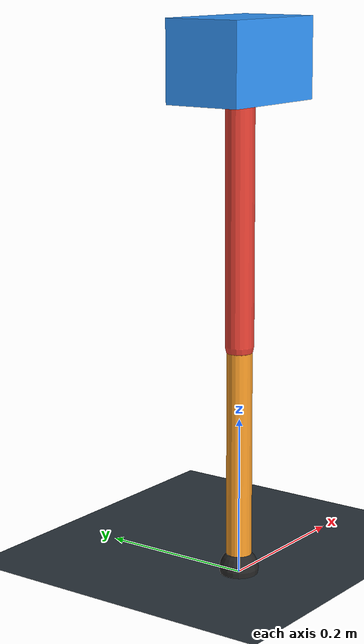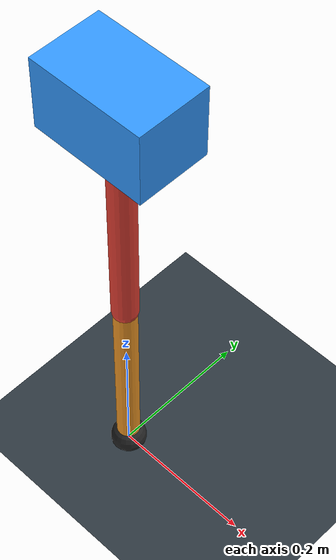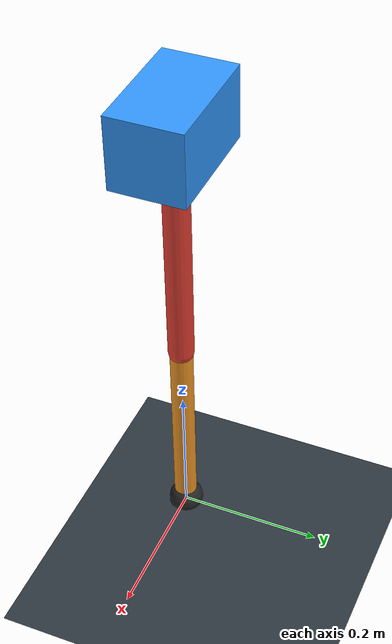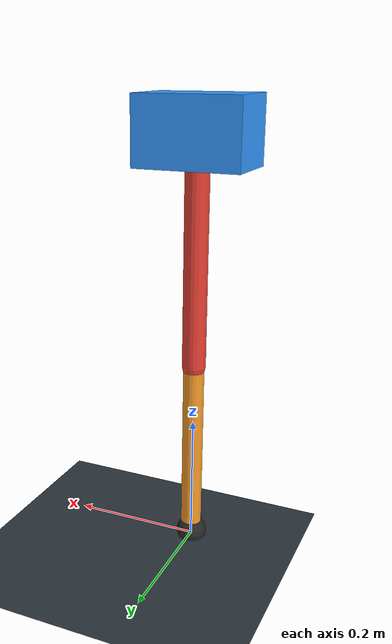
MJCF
<mujoco model="single_axis_two_bar">
  <compiler angle="radian" inertiafromgeom="true"/>
  <option timestep="0.001" integrator="implicitfast" gravity="0 0 -9.81"/>
  <default>
    <joint damping="0.08"/>
    <geom friction="1.2 0.01 0.0001" condim="3"/>
  </default>
  <worldbody>
    <geom name="floor" type="plane" size="5 5 0.1" rgba="0.18 0.22 0.25 1"/>
    <body name="carriage" pos="0 0 0.6417190229276636">
      <joint name="pole_slide" type="slide" axis="0 0 1"/>
      <geom name="payload" type="box" size="0.08 0.05 0.05" mass="3.247974127494387" rgba="0.2 0.6 1 1"/>
      <body name="thigh" pos="0 0 0">
        <joint name="hip" type="hinge" axis="0 1 0"/>
        <geom name="thigh_link" type="capsule" fromto="0 0 0 0 0 -0.34871289579480574" size="0.018" mass="0.24846254608817533" rgba="0.9 0.25 0.2 1"/>
        <body name="shank" pos="0 0 -0.34871289579480574">
          <joint name="knee" type="hinge" axis="0 1 0"/>
          <geom name="shank_link" type="capsule" fromto="0 0 0 0 0 -0.28707991134711547" size="0.016" mass="0.2045482302611604" rgba="0.95 0.6 0.15 1"/>
          <geom name="foot" type="sphere" pos="0 0 -0.28707991134711547" size="0.025" mass="0.03" rgba="0.15 0.15 0.15 1"/>
          <site name="toe" pos="0 0 -0.28707991134711547" size="0.008"/>
        </body>
      </body>
    </body>
  </worldbody>
  <actuator>
    <motor name="hip_motor" joint="hip" ctrlrange="-33.20884625328048 33.20884625328048"/>
    <motor name="knee_motor" joint="knee" ctrlrange="-155.3586859039151 155.3586859039151"/>
  </actuator>
</mujoco>
